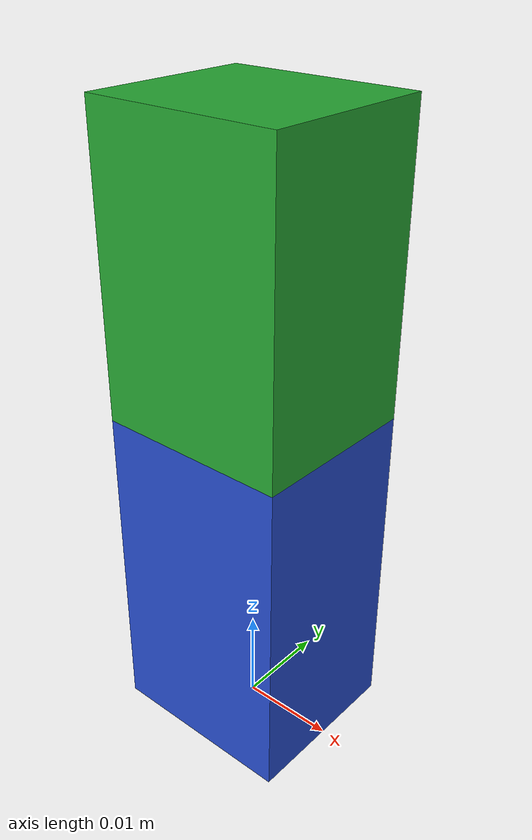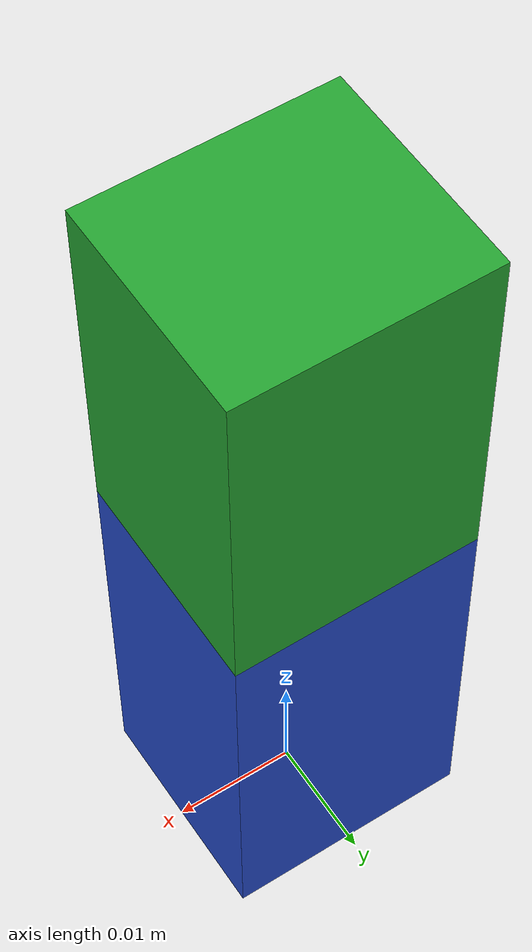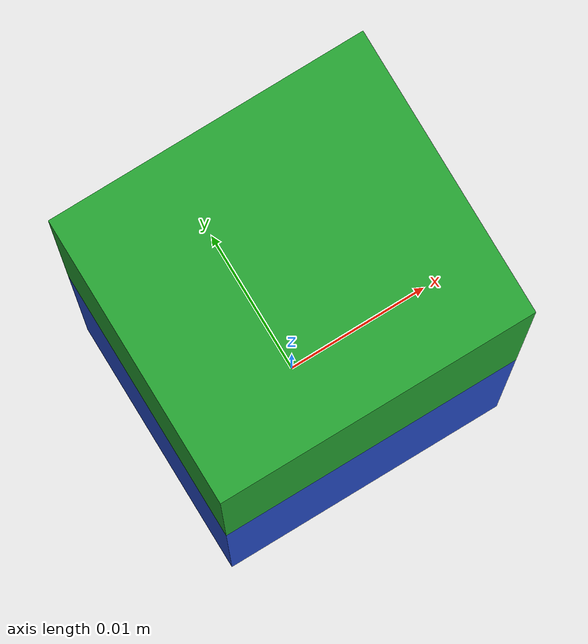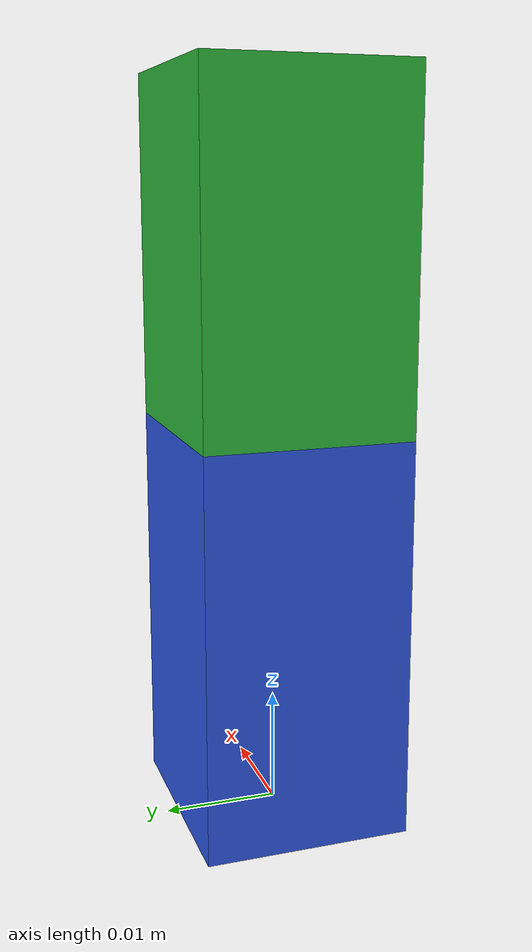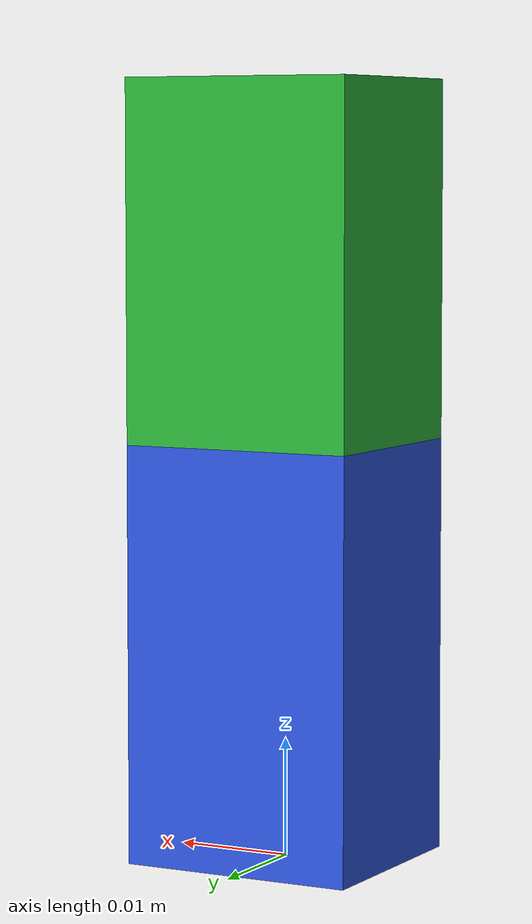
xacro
<?xml version="1.0" ?>

<robot xmlns:xacro="http://www.ros.org/wiki/xacro">

<link name="base_thumb"/>

    <link name="thumb_base">

        <visual>
            <geometry>
                <box size="0.020 0.018 0.035"/>
            </geometry>
            <origin xyz="0 0 0.0175" rpy="0 0 0"/>
            <material name="blue"/>
        </visual>

        <collision>
            <geometry>
                <box size="0.020 0.018 0.035"/>
            </geometry>

            <origin xyz="0 0 0.0175" rpy="0 0 0"/>
        </collision>

    </link>

    <link name="thumb_middle">

        <visual>
            <geometry>
                <box size="0.020 0.018 0.030"/>
            </geometry>
            <origin xyz="0 0 0.015" rpy="0 0 0"/>
            <material name="dark_green"/>
        </visual>

        <collision>
            <geometry>
                <box size="0.020 0.018 0.030"/>
            </geometry>

            <origin xyz="0 0 0.015" rpy="0 0 0"/>
        </collision>

    </link>

    <joint name="base_to_base_thumb" type="revolute">

        <parent link="base_thumb"/>
        <child link="thumb_base"/>

        <!-- End of 45 mm base segment -->
        <origin xyz="0 0 0" rpy="0 0 0"/>

        <axis xyz="1 0 0"/>

        <limit
            effort="1000.0"
            velocity="1.0"
            lower="-1.57"
            upper="0.57"/>

    </joint>

    <joint name="thumb_base_to_middle" type="revolute">

        <parent link="thumb_base"/>
        <child link="thumb_middle"/>

        <!-- End of 35 mm proximal segment -->
        <origin xyz="0 0 0.035" rpy="0 0 0"/>

        <axis xyz="1 0 0"/>

        <limit
            effort="1000.0"
            velocity="1.0"
            lower="-1.57"
            upper="0.57"/>

    </joint>

</robot>
